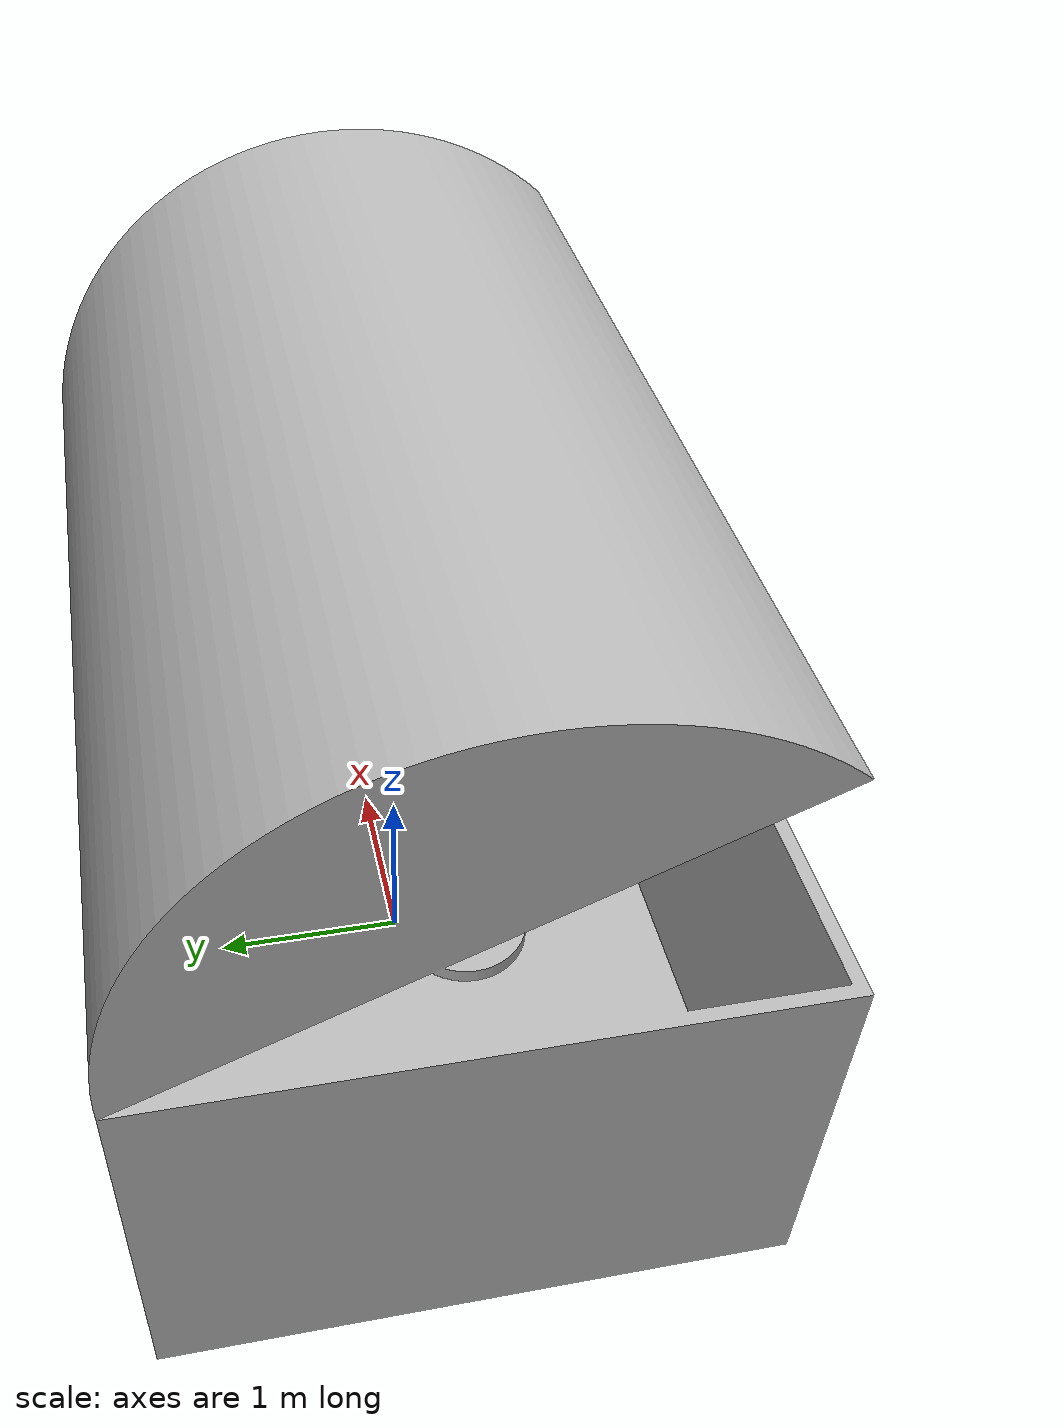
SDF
<sdf version="1.6">
  <model name="chest">
    <link name="link">
    <visual name='visual'>
      <geometry>
        <mesh>
          <uri>model://chest/meshes/chest.stl</uri>
	  <scale>0.01 0.01 0.01</scale>
        </mesh>
      </geometry>
    </visual>

    <collision name='collision'>
      <geometry>
        <mesh>
          <uri>model://chest/meshes/chest.stl</uri>
	        <scale>0.01 0.01 0.01</scale>
        </mesh>
      </geometry>
    </collision>

    </link>
  </model>
</sdf>
